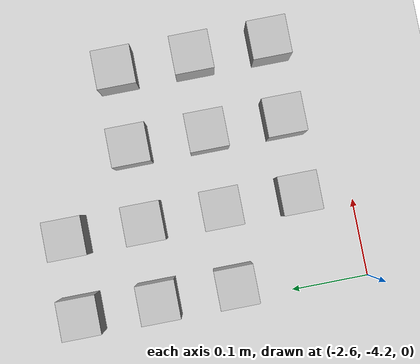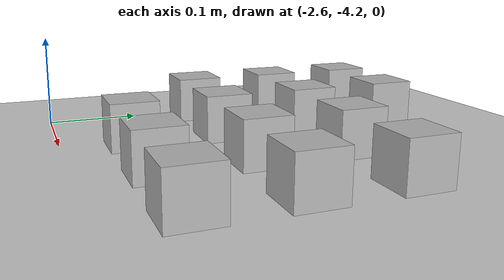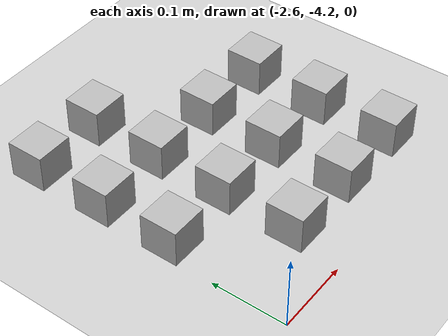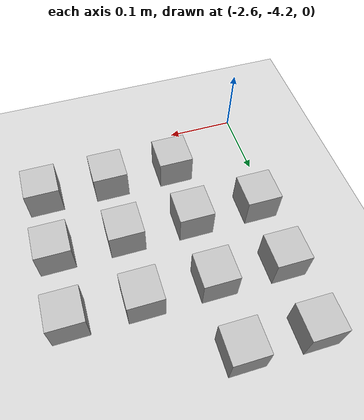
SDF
<sdf version="1.6">
 <world name="default">
  <model name="ground_plane">
   <static>1</static>
   <link name="link">
    <collision name="collision">
     <geometry><plane><normal>0 0 1</normal><size>100 100</size></plane></geometry>
     <surface><friction><ode><mu>100</mu><mu2>50</mu2></ode></friction></surface>
    </collision>
    <visual name="visual">
     <cast_shadows>0</cast_shadows>
     <geometry><plane><normal>0 0 1</normal><size>100 100</size></plane></geometry>
     <material>
      <script><uri>file://media/materials/scripts/gazebo.material</uri><name>Gazebo/Grey</name></script>
     </material>
    </visual>
   </link>
  </model>
  <model name="at113">
   <static>0</static>
   <link name="link">
    <inertial>
     <mass>0.01</mass>
     <inertia><ixx>4e-05</ixx><ixy>0</ixy><ixz>0</ixz><iyy>4e-05</iyy><iyz>0</iyz><izz>4e-05</izz></inertia>
    </inertial>
    <visual name="visual">
     <geometry><box><size>0.05 0.05 0.05</size></box></geometry>
     <material>
      <script>
       <uri>model://at0/materials/scripts</uri>
       <uri>model://at0/materials/textures</uri>
       <name>at0/Diffuse</name>
      </script>
     </material>
    </visual>
    <collision name="collision">
     <geometry><box><size>0.05 0.05 0.05</size></box></geometry>
     <surface><friction><ode><mu>0.8</mu><mu2>0.7</mu2></ode></friction></surface>
    </collision>
   </link>
   <pose>-2.47852 -4.12864 0.025 0 -0 0</pose>
  </model>
  <model name="at114">
   <static>0</static>
   <link name="link">
    <inertial>
     <mass>0.01</mass>
     <inertia><ixx>4e-05</ixx><ixy>0</ixy><ixz>0</ixz><iyy>4e-05</iyy><iyz>0</iyz><izz>4e-05</izz></inertia>
    </inertial>
    <visual name="visual">
     <geometry><box><size>0.05 0.05 0.05</size></box></geometry>
     <material>
      <script>
       <uri>model://at0/materials/scripts</uri>
       <uri>model://at0/materials/textures</uri>
       <name>at0/Diffuse</name>
      </script>
     </material>
    </visual>
    <collision name="collision">
     <geometry><box><size>0.05 0.05 0.05</size></box></geometry>
     <surface><friction><ode><mu>0.8</mu><mu2>0.7</mu2></ode></friction></surface>
    </collision>
   </link>
   <pose>-2.37852 -4.12864 0.025 0 -0 0</pose>
  </model>
  <model name="at115">
   <static>0</static>
   <link name="link">
    <inertial>
     <mass>0.01</mass>
     <inertia><ixx>4e-05</ixx><ixy>0</ixy><ixz>0</ixz><iyy>4e-05</iyy><iyz>0</iyz><izz>4e-05</izz></inertia>
    </inertial>
    <visual name="visual">
     <geometry><box><size>0.05 0.05 0.05</size></box></geometry>
     <material>
      <script>
       <uri>model://at0/materials/scripts</uri>
       <uri>model://at0/materials/textures</uri>
       <name>at0/Diffuse</name>
      </script>
     </material>
    </visual>
    <collision name="collision">
     <geometry><box><size>0.05 0.05 0.05</size></box></geometry>
     <surface><friction><ode><mu>0.8</mu><mu2>0.7</mu2></ode></friction></surface>
    </collision>
   </link>
   <pose>-2.27852 -4.12864 0.025 0 -0 0</pose>
  </model>
  <model name="at116">
   <static>0</static>
   <link name="link">
    <inertial>
     <mass>0.01</mass>
     <inertia><ixx>4e-05</ixx><ixy>0</ixy><ixz>0</ixz><iyy>4e-05</iyy><iyz>0</iyz><izz>4e-05</izz></inertia>
    </inertial>
    <visual name="visual">
     <geometry><box><size>0.05 0.05 0.05</size></box></geometry>
     <material>
      <script>
       <uri>model://at0/materials/scripts</uri>
       <uri>model://at0/materials/textures</uri>
       <name>at0/Diffuse</name>
      </script>
     </material>
    </visual>
    <collision name="collision">
     <geometry><box><size>0.05 0.05 0.05</size></box></geometry>
     <surface><friction><ode><mu>0.8</mu><mu2>0.7</mu2></ode></friction></surface>
    </collision>
   </link>
   <pose>-2.57852 -4.02864 0.025 0 -0 0</pose>
  </model>
  <model name="at117">
   <static>0</static>
   <link name="link">
    <inertial>
     <mass>0.01</mass>
     <inertia><ixx>4e-05</ixx><ixy>0</ixy><ixz>0</ixz><iyy>4e-05</iyy><iyz>0</iyz><izz>4e-05</izz></inertia>
    </inertial>
    <visual name="visual">
     <geometry><box><size>0.05 0.05 0.05</size></box></geometry>
     <material>
      <script>
       <uri>model://at0/materials/scripts</uri>
       <uri>model://at0/materials/textures</uri>
       <name>at0/Diffuse</name>
      </script>
     </material>
    </visual>
    <collision name="collision">
     <geometry><box><size>0.05 0.05 0.05</size></box></geometry>
     <surface><friction><ode><mu>0.8</mu><mu2>0.7</mu2></ode></friction></surface>
    </collision>
   </link>
   <pose>-2.47852 -4.02864 0.025 0 -0 0</pose>
  </model>
  <model name="at118">
   <static>0</static>
   <link name="link">
    <inertial>
     <mass>0.01</mass>
     <inertia><ixx>4e-05</ixx><ixy>0</ixy><ixz>0</ixz><iyy>4e-05</iyy><iyz>0</iyz><izz>4e-05</izz></inertia>
    </inertial>
    <visual name="visual">
     <geometry><box><size>0.05 0.05 0.05</size></box></geometry>
     <material>
      <script>
       <uri>model://at0/materials/scripts</uri>
       <uri>model://at0/materials/textures</uri>
       <name>at0/Diffuse</name>
      </script>
     </material>
    </visual>
    <collision name="collision">
     <geometry><box><size>0.05 0.05 0.05</size></box></geometry>
     <surface><friction><ode><mu>0.8</mu><mu2>0.7</mu2></ode></friction></surface>
    </collision>
   </link>
   <pose>-2.37852 -4.02864 0.025 0 -0 0</pose>
  </model>
  <model name="at119">
   <static>0</static>
   <link name="link">
    <inertial>
     <mass>0.01</mass>
     <inertia><ixx>4e-05</ixx><ixy>0</ixy><ixz>0</ixz><iyy>4e-05</iyy><iyz>0</iyz><izz>4e-05</izz></inertia>
    </inertial>
    <visual name="visual">
     <geometry><box><size>0.05 0.05 0.05</size></box></geometry>
     <material>
      <script>
       <uri>model://at0/materials/scripts</uri>
       <uri>model://at0/materials/textures</uri>
       <name>at0/Diffuse</name>
      </script>
     </material>
    </visual>
    <collision name="collision">
     <geometry><box><size>0.05 0.05 0.05</size></box></geometry>
     <surface><friction><ode><mu>0.8</mu><mu2>0.7</mu2></ode></friction></surface>
    </collision>
   </link>
   <pose>-2.27852 -4.02864 0.025 0 -0 0</pose>
  </model>
  <model name="at120">
   <static>0</static>
   <link name="link">
    <inertial>
     <mass>0.01</mass>
     <inertia><ixx>4e-05</ixx><ixy>0</ixy><ixz>0</ixz><iyy>4e-05</iyy><iyz>0</iyz><izz>4e-05</izz></inertia>
    </inertial>
    <visual name="visual">
     <geometry><box><size>0.05 0.05 0.05</size></box></geometry>
     <material>
      <script>
       <uri>model://at0/materials/scripts</uri>
       <uri>model://at0/materials/textures</uri>
       <name>at0/Diffuse</name>
      </script>
     </material>
    </visual>
    <collision name="collision">
     <geometry><box><size>0.05 0.05 0.05</size></box></geometry>
     <surface><friction><ode><mu>0.8</mu><mu2>0.7</mu2></ode></friction></surface>
    </collision>
   </link>
   <pose>-2.57852 -3.92864 0.025 0 -0 0</pose>
  </model>
  <model name="at121">
   <static>0</static>
   <link name="link">
    <inertial>
     <mass>0.01</mass>
     <inertia><ixx>4e-05</ixx><ixy>0</ixy><ixz>0</ixz><iyy>4e-05</iyy><iyz>0</iyz><izz>4e-05</izz></inertia>
    </inertial>
    <visual name="visual">
     <geometry><box><size>0.05 0.05 0.05</size></box></geometry>
     <material>
      <script>
       <uri>model://at0/materials/scripts</uri>
       <uri>model://at0/materials/textures</uri>
       <name>at0/Diffuse</name>
      </script>
     </material>
    </visual>
    <collision name="collision">
     <geometry><box><size>0.05 0.05 0.05</size></box></geometry>
     <surface><friction><ode><mu>0.8</mu><mu2>0.7</mu2></ode></friction></surface>
    </collision>
   </link>
   <pose>-2.47852 -3.92864 0.025 0 -0 0</pose>
  </model>
  <model name="at122">
   <static>0</static>
   <link name="link">
    <inertial>
     <mass>0.01</mass>
     <inertia><ixx>4e-05</ixx><ixy>0</ixy><ixz>0</ixz><iyy>4e-05</iyy><iyz>0</iyz><izz>4e-05</izz></inertia>
    </inertial>
    <visual name="visual">
     <geometry><box><size>0.05 0.05 0.05</size></box></geometry>
     <material>
      <script>
       <uri>model://at0/materials/scripts</uri>
       <uri>model://at0/materials/textures</uri>
       <name>at0/Diffuse</name>
      </script>
     </material>
    </visual>
    <collision name="collision">
     <geometry><box><size>0.05 0.05 0.05</size></box></geometry>
     <surface><friction><ode><mu>0.8</mu><mu2>0.7</mu2></ode></friction></surface>
    </collision>
   </link>
   <pose>-2.37852 -3.92864 0.025 0 -0 0</pose>
  </model>
  <model name="at123">
   <static>0</static>
   <link name="link">
    <inertial>
     <mass>0.01</mass>
     <inertia><ixx>4e-05</ixx><ixy>0</ixy><ixz>0</ixz><iyy>4e-05</iyy><iyz>0</iyz><izz>4e-05</izz></inertia>
    </inertial>
    <visual name="visual">
     <geometry><box><size>0.05 0.05 0.05</size></box></geometry>
     <material>
      <script>
       <uri>model://at0/materials/scripts</uri>
       <uri>model://at0/materials/textures</uri>
       <name>at0/Diffuse</name>
      </script>
     </material>
    </visual>
    <collision name="collision">
     <geometry><box><size>0.05 0.05 0.05</size></box></geometry>
     <surface><friction><ode><mu>0.8</mu><mu2>0.7</mu2></ode></friction></surface>
    </collision>
   </link>
   <pose>-2.27852 -3.92864 0.025 0 -0 0</pose>
  </model>
  <model name="at124">
   <static>0</static>
   <link name="link">
    <inertial>
     <mass>0.01</mass>
     <inertia><ixx>4e-05</ixx><ixy>0</ixy><ixz>0</ixz><iyy>4e-05</iyy><iyz>0</iyz><izz>4e-05</izz></inertia>
    </inertial>
    <visual name="visual">
     <geometry><box><size>0.05 0.05 0.05</size></box></geometry>
     <material>
      <script>
       <uri>model://at0/materials/scripts</uri>
       <uri>model://at0/materials/textures</uri>
       <name>at0/Diffuse</name>
      </script>
     </material>
    </visual>
    <collision name="collision">
     <geometry><box><size>0.05 0.05 0.05</size></box></geometry>
     <surface><friction><ode><mu>0.8</mu><mu2>0.7</mu2></ode></friction></surface>
    </collision>
   </link>
   <pose>-2.57852 -3.82864 0.025 0 -0 0</pose>
  </model>
  <model name="at125">
   <static>0</static>
   <link name="link">
    <inertial>
     <mass>0.01</mass>
     <inertia><ixx>4e-05</ixx><ixy>0</ixy><ixz>0</ixz><iyy>4e-05</iyy><iyz>0</iyz><izz>4e-05</izz></inertia>
    </inertial>
    <visual name="visual">
     <geometry><box><size>0.05 0.05 0.05</size></box></geometry>
     <material>
      <script>
       <uri>model://at0/materials/scripts</uri>
       <uri>model://at0/materials/textures</uri>
       <name>at0/Diffuse</name>
      </script>
     </material>
    </visual>
    <collision name="collision">
     <geometry><box><size>0.05 0.05 0.05</size></box></geometry>
     <surface><friction><ode><mu>0.8</mu><mu2>0.7</mu2></ode></friction></surface>
    </collision>
   </link>
   <pose>-2.47852 -3.82864 0.025 0 -0 0</pose>
  </model>
 </world>
</sdf>
